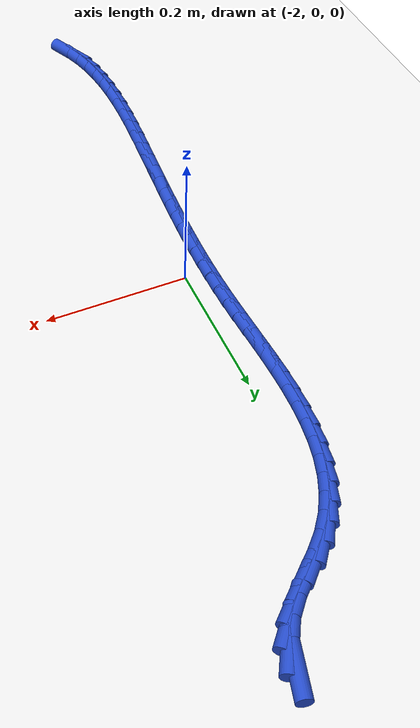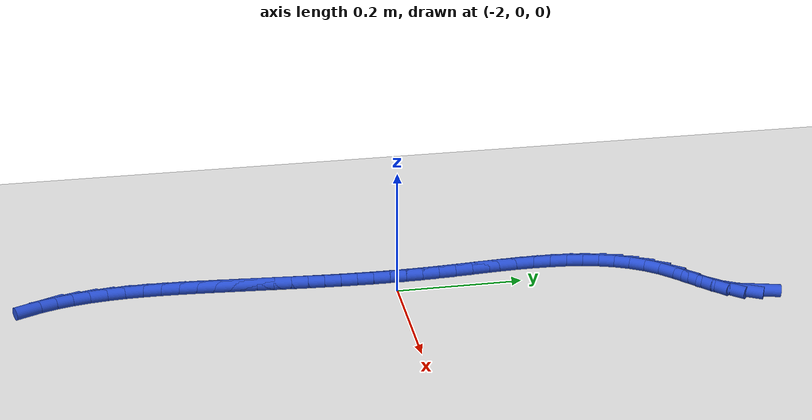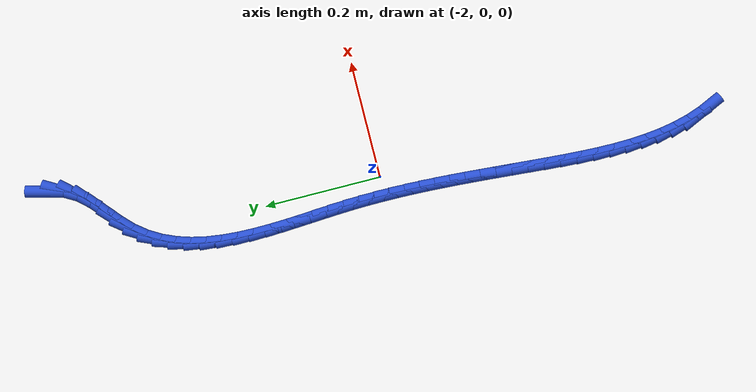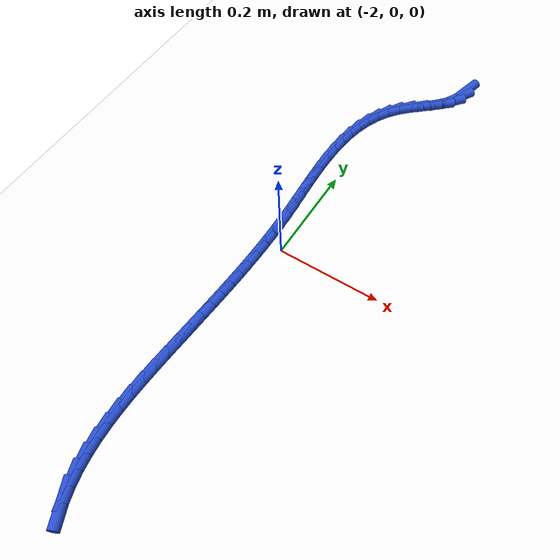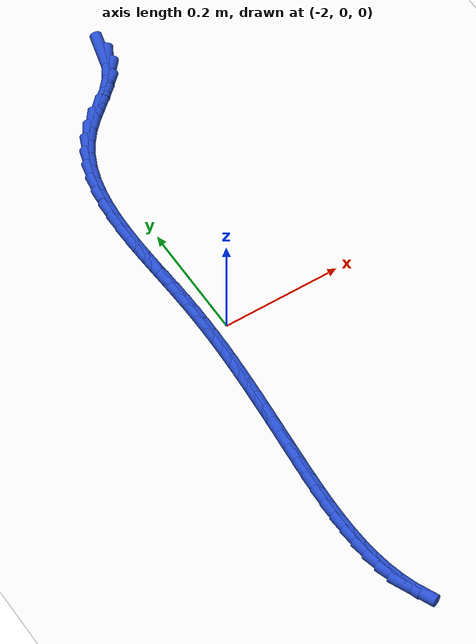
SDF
<sdf version="1.6">
 <world name="default">
  <model name="ground_plane">
   <static>1</static>
   <link name="link">
    <collision name="collision">
     <geometry><plane><normal>0 0 1</normal><size>100 100</size></plane></geometry>
     <surface><friction><ode><mu>100</mu><mu2>50</mu2></ode></friction></surface>
    </collision>
    <visual name="visual">
     <cast_shadows>0</cast_shadows>
     <geometry><plane><normal>0 0 1</normal><size>100 100</size></plane></geometry>
     <material>
      <script><uri>file://media/materials/scripts/gazebo.material</uri><name>Gazebo/WhiteGlow</name></script>
     </material>
    </visual>
   </link>
  </model>
  <model name="line">
   <link name="link_105">
    <pose>-1.8848105389328196 0.5468420540264167 0.01 0 1.57 1.3119761826926017</pose>
    <collision name="collision">
     <geometry><cylinder><radius>0.01</radius><length>0.08</length></cylinder></geometry>
    </collision>
    <visual name="visual">
     <material>
      <script><name>Gazebo/Blue</name><uri>file://media/materials/scripts/gazebo.material</uri></script>
     </material>
     <geometry><cylinder><radius>0.01</radius><length>0.08</length></cylinder></geometry>
    </visual>
   </link>
   <link name="link_106">
    <pose>-1.8914068553929104 0.521927596845452 0.01 0 1.57 1.0507535966799622</pose>
    <collision name="collision">
     <geometry><cylinder><radius>0.01</radius><length>0.08</length></cylinder></geometry>
    </collision>
    <visual name="visual">
     <material>
      <script><name>Gazebo/Blue</name><uri>file://media/materials/scripts/gazebo.material</uri></script>
     </material>
     <geometry><cylinder><radius>0.01</radius><length>0.08</length></cylinder></geometry>
    </visual>
   </link>
   <link name="link_107">
    <pose>-1.9039531759537018 0.5000171642790641 0.01 0 1.57 0.8395922741694354</pose>
    <collision name="collision">
     <geometry><cylinder><radius>0.01</radius><length>0.08</length></cylinder></geometry>
    </collision>
    <visual name="visual">
     <material>
      <script><name>Gazebo/Blue</name><uri>file://media/materials/scripts/gazebo.material</uri></script>
     </material>
     <geometry><cylinder><radius>0.01</radius><length>0.08</length></cylinder></geometry>
    </visual>
   </link>
   <link name="link_108">
    <pose>-1.9213823846065516 0.4805885191846716 0.01 0 1.57 0.7311464849480377</pose>
    <collision name="collision">
     <geometry><cylinder><radius>0.01</radius><length>0.08</length></cylinder></geometry>
    </collision>
    <visual name="visual">
     <material>
      <script><name>Gazebo/Blue</name><uri>file://media/materials/scripts/gazebo.material</uri></script>
     </material>
     <geometry><cylinder><radius>0.01</radius><length>0.08</length></cylinder></geometry>
    </visual>
   </link>
   <link name="link_109">
    <pose>-1.9415231126635923 0.4625226017323374 0.01 0 1.57 0.7114091680535584</pose>
    <collision name="collision">
     <geometry><cylinder><radius>0.01</radius><length>0.08</length></cylinder></geometry>
    </collision>
    <visual name="visual">
     <material>
      <script><name>Gazebo/Blue</name><uri>file://media/materials/scripts/gazebo.material</uri></script>
     </material>
     <geometry><cylinder><radius>0.01</radius><length>0.08</length></cylinder></geometry>
    </visual>
   </link>
   <link name="link_110">
    <pose>-1.962200930222627 0.4446986975775403 0.01 0 1.57 0.7763026427562312</pose>
    <collision name="collision">
     <geometry><cylinder><radius>0.01</radius><length>0.08</length></cylinder></geometry>
    </collision>
    <visual name="visual">
     <material>
      <script><name>Gazebo/Blue</name><uri>file://media/materials/scripts/gazebo.material</uri></script>
     </material>
     <geometry><cylinder><radius>0.01</radius><length>0.08</length></cylinder></geometry>
    </visual>
   </link>
   <link name="link_111">
    <pose>-1.9812449817672375 0.4259979639727986 0.01 0 1.57 0.9056962467084021</pose>
    <collision name="collision">
     <geometry><cylinder><radius>0.01</radius><length>0.08</length></cylinder></geometry>
    </collision>
    <visual name="visual">
     <material>
      <script><name>Gazebo/Blue</name><uri>file://media/materials/scripts/gazebo.material</uri></script>
     </material>
     <geometry><cylinder><radius>0.01</radius><length>0.08</length></cylinder></geometry>
    </visual>
   </link>
   <link name="link_112">
    <pose>-1.9971883002767663 0.4056701237665302 0.01 0 1.57 1.0377089754421864</pose>
    <collision name="collision">
     <geometry><cylinder><radius>0.01</radius><length>0.08</length></cylinder></geometry>
    </collision>
    <visual name="visual">
     <material>
      <script><name>Gazebo/Blue</name><uri>file://media/materials/scripts/gazebo.material</uri></script>
     </material>
     <geometry><cylinder><radius>0.01</radius><length>0.08</length></cylinder></geometry>
    </visual>
   </link>
   <link name="link_113">
    <pose>-2.0101087165380207 0.38377377696295417 0.01 0 1.57 1.158847343267695</pose>
    <collision name="collision">
     <geometry><cylinder><radius>0.01</radius><length>0.08</length></cylinder></geometry>
    </collision>
    <visual name="visual">
     <material>
      <script><name>Gazebo/Blue</name><uri>file://media/materials/scripts/gazebo.material</uri></script>
     </material>
     <geometry><cylinder><radius>0.01</radius><length>0.08</length></cylinder></geometry>
    </visual>
   </link>
   <link name="link_114">
    <pose>-2.020289161175801 0.36047491663275516 0.01 0 1.57 1.2658298532358956</pose>
    <collision name="collision">
     <geometry><cylinder><radius>0.01</radius><length>0.08</length></cylinder></geometry>
    </collision>
    <visual name="visual">
     <material>
      <script><name>Gazebo/Blue</name><uri>file://media/materials/scripts/gazebo.material</uri></script>
     </material>
     <geometry><cylinder><radius>0.01</radius><length>0.08</length></cylinder></geometry>
    </visual>
   </link>
   <link name="link_115">
    <pose>-2.0280125648149094 0.33593953584661757 0.01 0 1.57 1.3573774577721494</pose>
    <collision name="collision">
     <geometry><cylinder><radius>0.01</radius><length>0.08</length></cylinder></geometry>
    </collision>
    <visual name="visual">
     <material>
      <script><name>Gazebo/Blue</name><uri>file://media/materials/scripts/gazebo.material</uri></script>
     </material>
     <geometry><cylinder><radius>0.01</radius><length>0.08</length></cylinder></geometry>
    </visual>
   </link>
   <link name="link_116">
    <pose>-2.033561858080145 0.3103336276752266 0.01 0 1.57 1.4336745996832068</pose>
    <collision name="collision">
     <geometry><cylinder><radius>0.01</radius><length>0.08</length></cylinder></geometry>
    </collision>
    <visual name="visual">
     <material>
      <script><name>Gazebo/Blue</name><uri>file://media/materials/scripts/gazebo.material</uri></script>
     </material>
     <geometry><cylinder><radius>0.01</radius><length>0.08</length></cylinder></geometry>
    </visual>
   </link>
   <link name="link_117">
    <pose>-2.0372199715963113 0.2838231851892668 0.01 0 1.57 1.4957105667933275</pose>
    <collision name="collision">
     <geometry><cylinder><radius>0.01</radius><length>0.08</length></cylinder></geometry>
    </collision>
    <visual name="visual">
     <material>
      <script><name>Gazebo/Blue</name><uri>file://media/materials/scripts/gazebo.material</uri></script>
     </material>
     <geometry><cylinder><radius>0.01</radius><length>0.08</length></cylinder></geometry>
    </visual>
   </link>
   <link name="link_118">
    <pose>-2.0392698359882084 0.25657420145942234 0.01 0 1.57 1.5447595808169436</pose>
    <collision name="collision">
     <geometry><cylinder><radius>0.01</radius><length>0.08</length></cylinder></geometry>
    </collision>
    <visual name="visual">
     <material>
      <script><name>Gazebo/Blue</name><uri>file://media/materials/scripts/gazebo.material</uri></script>
     </material>
     <geometry><cylinder><radius>0.01</radius><length>0.08</length></cylinder></geometry>
    </visual>
   </link>
   <link name="link_119">
    <pose>-2.039994381880638 0.22875266955637857 0.01 0 1.57 -1.5595370249895415</pose>
    <collision name="collision">
     <geometry><cylinder><radius>0.01</radius><length>0.08</length></cylinder></geometry>
    </collision>
    <visual name="visual">
     <material>
      <script><name>Gazebo/Blue</name><uri>file://media/materials/scripts/gazebo.material</uri></script>
     </material>
     <geometry><cylinder><radius>0.01</radius><length>0.08</length></cylinder></geometry>
    </visual>
   </link>
   <link name="link_120">
    <pose>-2.0396765398983994 0.2005245825508198 0.01 0 1.57 -1.5329727740860972</pose>
    <collision name="collision">
     <geometry><cylinder><radius>0.01</radius><length>0.08</length></cylinder></geometry>
    </collision>
    <visual name="visual">
     <material>
      <script><name>Gazebo/Blue</name><uri>file://media/materials/scripts/gazebo.material</uri></script>
     </material>
     <geometry><cylinder><radius>0.01</radius><length>0.08</length></cylinder></geometry>
    </visual>
   </link>
   <link name="link_121">
    <pose>-2.0385992406662963 0.17205593351343076 0.01 0 1.57 -1.516412350843906</pose>
    <collision name="collision">
     <geometry><cylinder><radius>0.01</radius><length>0.08</length></cylinder></geometry>
    </collision>
    <visual name="visual">
     <material>
      <script><name>Gazebo/Blue</name><uri>file://media/materials/scripts/gazebo.material</uri></script>
     </material>
     <geometry><cylinder><radius>0.01</radius><length>0.08</length></cylinder></geometry>
    </visual>
   </link>
   <link name="link_122">
    <pose>-2.037045414809128 0.143512715514896 0.01 0 1.57 -1.5094564440181104</pose>
    <collision name="collision">
     <geometry><cylinder><radius>0.01</radius><length>0.08</length></cylinder></geometry>
    </collision>
    <visual name="visual">
     <material>
      <script><name>Gazebo/Blue</name><uri>file://media/materials/scripts/gazebo.material</uri></script>
     </material>
     <geometry><cylinder><radius>0.01</radius><length>0.08</length></cylinder></geometry>
    </visual>
   </link>
   <link name="link_123">
    <pose>-2.0352979929516968 0.11506092162589993 0.01 0 1.57 -1.512054837316595</pose>
    <collision name="collision">
     <geometry><cylinder><radius>0.01</radius><length>0.08</length></cylinder></geometry>
    </collision>
    <visual name="visual">
     <material>
      <script><name>Gazebo/Blue</name><uri>file://media/materials/scripts/gazebo.material</uri></script>
     </material>
     <geometry><cylinder><radius>0.01</radius><length>0.08</length></cylinder></geometry>
    </visual>
   </link>
   <link name="link_124">
    <pose>-2.033639905718803 0.08686654491712781 0.01 0 1.57 -1.5244721914635981</pose>
    <collision name="collision">
     <geometry><cylinder><radius>0.01</radius><length>0.08</length></cylinder></geometry>
    </collision>
    <visual name="visual">
     <material>
      <script><name>Gazebo/Blue</name><uri>file://media/materials/scripts/gazebo.material</uri></script>
     </material>
     <geometry><cylinder><radius>0.01</radius><length>0.08</length></cylinder></geometry>
    </visual>
   </link>
   <link name="link_125">
    <pose>-2.0323524638601613 0.059094395484548666 0.01 0 1.57 -1.5431916061423883</pose>
    <collision name="collision">
     <geometry><cylinder><radius>0.01</radius><length>0.08</length></cylinder></geometry>
    </collision>
    <visual name="visual">
     <material>
      <script><name>Gazebo/Blue</name><uri>file://media/materials/scripts/gazebo.material</uri></script>
     </material>
     <geometry><cylinder><radius>0.01</radius><length>0.08</length></cylinder></geometry>
    </visual>
   </link>
   <link name="link_126">
    <pose>-2.0315994661911283 0.031823465913732 0.01 0 1.57 -1.5614925663036696</pose>
    <collision name="collision">
     <geometry><cylinder><radius>0.01</radius><length>0.08</length></cylinder></geometry>
    </collision>
    <visual name="visual">
     <material>
      <script><name>Gazebo/Blue</name><uri>file://media/materials/scripts/gazebo.material</uri></script>
     </material>
     <geometry><cylinder><radius>0.01</radius><length>0.08</length></cylinder></geometry>
    </visual>
   </link>
   <link name="link_127">
    <pose>-2.0313498107100236 0.004990415137211754 0.01 0 1.57 1.5630813623841386</pose>
    <collision name="collision">
     <geometry><cylinder><radius>0.01</radius><length>0.08</length></cylinder></geometry>
    </collision>
    <visual name="visual">
     <material>
      <script><name>Gazebo/Blue</name><uri>file://media/materials/scripts/gazebo.material</uri></script>
     </material>
     <geometry><cylinder><radius>0.01</radius><length>0.08</length></cylinder></geometry>
    </visual>
   </link>
   <link name="link_128">
    <pose>-2.0315540446395204 -0.021481499256679467 0.01 0 1.57 1.5475577390319308</pose>
    <collision name="collision">
     <geometry><cylinder><radius>0.01</radius><length>0.08</length></cylinder></geometry>
    </collision>
    <visual name="visual">
     <material>
      <script><name>Gazebo/Blue</name><uri>file://media/materials/scripts/gazebo.material</uri></script>
     </material>
     <geometry><cylinder><radius>0.01</radius><length>0.08</length></cylinder></geometry>
    </visual>
   </link>
   <link name="link_129">
    <pose>-2.032162715202294 -0.04766901967960883 0.01 0 1.57 1.5337209726937873</pose>
    <collision name="collision">
     <geometry><cylinder><radius>0.01</radius><length>0.08</length></cylinder></geometry>
    </collision>
    <visual name="visual">
     <material>
      <script><name>Gazebo/Blue</name><uri>file://media/materials/scripts/gazebo.material</uri></script>
     </material>
     <geometry><cylinder><radius>0.01</radius><length>0.08</length></cylinder></geometry>
    </visual>
   </link>
   <link name="link_130">
    <pose>-2.033126369621016 -0.07364888854324343 0.01 0 1.57 1.5217356659473318</pose>
    <collision name="collision">
     <geometry><cylinder><radius>0.01</radius><length>0.08</length></cylinder></geometry>
    </collision>
    <visual name="visual">
     <material>
      <script><name>Gazebo/Blue</name><uri>file://media/materials/scripts/gazebo.material</uri></script>
     </material>
     <geometry><cylinder><radius>0.01</radius><length>0.08</length></cylinder></geometry>
    </visual>
   </link>
   <link name="link_131">
    <pose>-2.0343955551183592 -0.09949784825925041 0.01 0 1.57 1.5117344123850205</pose>
    <collision name="collision">
     <geometry><cylinder><radius>0.01</radius><length>0.08</length></cylinder></geometry>
    </collision>
    <visual name="visual">
     <material>
      <script><name>Gazebo/Blue</name><uri>file://media/materials/scripts/gazebo.material</uri></script>
     </material>
     <geometry><cylinder><radius>0.01</radius><length>0.08</length></cylinder></geometry>
    </visual>
   </link>
   <link name="link_132">
    <pose>-2.0359208189169977 -0.12529264123929681 0.01 0 1.57 1.5038143473089411</pose>
    <collision name="collision">
     <geometry><cylinder><radius>0.01</radius><length>0.08</length></cylinder></geometry>
    </collision>
    <visual name="visual">
     <material>
      <script><name>Gazebo/Blue</name><uri>file://media/materials/scripts/gazebo.material</uri></script>
     </material>
     <geometry><cylinder><radius>0.01</radius><length>0.08</length></cylinder></geometry>
    </visual>
   </link>
   <link name="link_133">
    <pose>-2.037652708239605 -0.15111000989505052 0.01 0 1.57 1.4980352045127714</pose>
    <collision name="collision">
     <geometry><cylinder><radius>0.01</radius><length>0.08</length></cylinder></geometry>
    </collision>
    <visual name="visual">
     <material>
      <script><name>Gazebo/Blue</name><uri>file://media/materials/scripts/gazebo.material</uri></script>
     </material>
     <geometry><cylinder><radius>0.01</radius><length>0.08</length></cylinder></geometry>
    </visual>
   </link>
   <link name="link_134">
    <pose>-2.0395417703088548 -0.1770266966381772 0.01 0 1.57 1.494418866208825</pose>
    <collision name="collision">
     <geometry><cylinder><radius>0.01</radius><length>0.08</length></cylinder></geometry>
    </collision>
    <visual name="visual">
     <material>
      <script><name>Gazebo/Blue</name><uri>file://media/materials/scripts/gazebo.material</uri></script>
     </material>
     <geometry><cylinder><radius>0.01</radius><length>0.08</length></cylinder></geometry>
    </visual>
   </link>
   <link name="link_135">
    <pose>-2.041538552347419 -0.2031194438803447 0.01 0 1.57 1.4929503019937296</pose>
    <collision name="collision">
     <geometry><cylinder><radius>0.01</radius><length>0.08</length></cylinder></geometry>
    </collision>
    <visual name="visual">
     <material>
      <script><name>Gazebo/Blue</name><uri>file://media/materials/scripts/gazebo.material</uri></script>
     </material>
     <geometry><cylinder><radius>0.01</radius><length>0.08</length></cylinder></geometry>
    </visual>
   </link>
   <link name="link_136">
    <pose>-2.0435936015779714 -0.22946499403322002 0.01 0 1.57 1.4935797277631322</pose>
    <collision name="collision">
     <geometry><cylinder><radius>0.01</radius><length>0.08</length></cylinder></geometry>
    </collision>
    <visual name="visual">
     <material>
      <script><name>Gazebo/Blue</name><uri>file://media/materials/scripts/gazebo.material</uri></script>
     </material>
     <geometry><cylinder><radius>0.01</radius><length>0.08</length></cylinder></geometry>
    </visual>
   </link>
   <link name="link_137">
    <pose>-2.0456574652231856 -0.2561400895084704 0.01 0 1.57 1.4962286133116103</pose>
    <collision name="collision">
     <geometry><cylinder><radius>0.01</radius><length>0.08</length></cylinder></geometry>
    </collision>
    <visual name="visual">
     <material>
      <script><name>Gazebo/Blue</name><uri>file://media/materials/scripts/gazebo.material</uri></script>
     </material>
     <geometry><cylinder><radius>0.01</radius><length>0.08</length></cylinder></geometry>
    </visual>
   </link>
   <link name="link_138">
    <pose>-2.047680603184475 -0.28322133815188055 0.01 0 1.57 1.5020402397662747</pose>
    <collision name="collision">
     <geometry><cylinder><radius>0.01</radius><length>0.08</length></cylinder></geometry>
    </collision>
    <visual name="visual">
     <material>
      <script><name>Gazebo/Blue</name><uri>file://media/materials/scripts/gazebo.material</uri></script>
     </material>
     <geometry><cylinder><radius>0.01</radius><length>0.08</length></cylinder></geometry>
    </visual>
   </link>
   <link name="link_139">
    <pose>-2.0495746706455855 -0.31072554804182073 0.01 0 1.57 1.5141117194599003</pose>
    <collision name="collision">
     <geometry><cylinder><radius>0.01</radius><length>0.08</length></cylinder></geometry>
    </collision>
    <visual name="visual">
     <material>
      <script><name>Gazebo/Blue</name><uri>file://media/materials/scripts/gazebo.material</uri></script>
     </material>
     <geometry><cylinder><radius>0.01</radius><length>0.08</length></cylinder></geometry>
    </visual>
   </link>
   <link name="link_140">
    <pose>-2.0511516464397626 -0.3385159216402458 0.01 0 1.57 1.5329829189739606</pose>
    <collision name="collision">
     <geometry><cylinder><radius>0.01</radius><length>0.08</length></cylinder></geometry>
    </collision>
    <visual name="visual">
     <material>
      <script><name>Gazebo/Blue</name><uri>file://media/materials/scripts/gazebo.material</uri></script>
     </material>
     <geometry><cylinder><radius>0.01</radius><length>0.08</length></cylinder></geometry>
    </visual>
   </link>
   <link name="link_141">
    <pose>-2.052207726931078 -0.36643133993371857 0.01 0 1.57 1.5589106114102949</pose>
    <collision name="collision">
     <geometry><cylinder><radius>0.01</radius><length>0.08</length></cylinder></geometry>
    </collision>
    <visual name="visual">
     <material>
      <script><name>Gazebo/Blue</name><uri>file://media/materials/scripts/gazebo.material</uri></script>
     </material>
     <geometry><cylinder><radius>0.01</radius><length>0.08</length></cylinder></geometry>
    </visual>
   </link>
   <link name="link_142">
    <pose>-2.052539108483605 -0.3943106839088045 0.01 0 1.57 -1.5492290561025992</pose>
    <collision name="collision">
     <geometry><cylinder><radius>0.01</radius><length>0.08</length></cylinder></geometry>
    </collision>
    <visual name="visual">
     <material>
      <script><name>Gazebo/Blue</name><uri>file://media/materials/scripts/gazebo.material</uri></script>
     </material>
     <geometry><cylinder><radius>0.01</radius><length>0.08</length></cylinder></geometry>
    </visual>
   </link>
   <link name="link_143">
    <pose>-2.0519419874614155 -0.42199283455206793 0.01 0 1.57 -1.5075869294554358</pose>
    <collision name="collision">
     <geometry><cylinder><radius>0.01</radius><length>0.08</length></cylinder></geometry>
    </collision>
    <visual name="visual">
     <material>
      <script><name>Gazebo/Blue</name><uri>file://media/materials/scripts/gazebo.material</uri></script>
     </material>
     <geometry><cylinder><radius>0.01</radius><length>0.08</length></cylinder></geometry>
    </visual>
   </link>
   <link name="link_144">
    <pose>-2.0502125602285823 -0.4493166728500736 0.01 0 1.57 -1.4569241758085367</pose>
    <collision name="collision">
     <geometry><cylinder><radius>0.01</radius><length>0.08</length></cylinder></geometry>
    </collision>
    <visual name="visual">
     <material>
      <script><name>Gazebo/Blue</name><uri>file://media/materials/scripts/gazebo.material</uri></script>
     </material>
     <geometry><cylinder><radius>0.01</radius><length>0.08</length></cylinder></geometry>
    </visual>
   </link>
   <link name="link_145">
    <pose>-2.047147023149179 -0.476121079789386 0.01 0 1.57 -1.3962964500672372</pose>
    <collision name="collision">
     <geometry><cylinder><radius>0.01</radius><length>0.08</length></cylinder></geometry>
    </collision>
    <visual name="visual">
     <material>
      <script><name>Gazebo/Blue</name><uri>file://media/materials/scripts/gazebo.material</uri></script>
     </material>
     <geometry><cylinder><radius>0.01</radius><length>0.08</length></cylinder></geometry>
    </visual>
   </link>
   <link name="link_146">
    <pose>-2.0425415725872766 -0.5022449363565696 0.01 0 1.57 -1.3247524820919132</pose>
    <collision name="collision">
     <geometry><cylinder><radius>0.01</radius><length>0.08</length></cylinder></geometry>
    </collision>
    <visual name="visual">
     <material>
      <script><name>Gazebo/Blue</name><uri>file://media/materials/scripts/gazebo.material</uri></script>
     </material>
     <geometry><cylinder><radius>0.01</radius><length>0.08</length></cylinder></geometry>
    </visual>
   </link>
   <link name="link_147">
    <pose>-2.036192404906948 -0.5275271235381891 0.01 0 1.57 -1.2415193552200607</pose>
    <collision name="collision">
     <geometry><cylinder><radius>0.01</radius><length>0.08</length></cylinder></geometry>
    </collision>
    <visual name="visual">
     <material>
      <script><name>Gazebo/Blue</name><uri>file://media/materials/scripts/gazebo.material</uri></script>
     </material>
     <geometry><cylinder><radius>0.01</radius><length>0.08</length></cylinder></geometry>
    </visual>
   </link>
   <link name="link_148">
    <pose>-2.0278957164722677 -0.5518065223208091 0.01 0 1.57 -1.1462872435440044</pose>
    <collision name="collision">
     <geometry><cylinder><radius>0.01</radius><length>0.08</length></cylinder></geometry>
    </collision>
    <visual name="visual">
     <material>
      <script><name>Gazebo/Blue</name><uri>file://media/materials/scripts/gazebo.material</uri></script>
     </material>
     <geometry><cylinder><radius>0.01</radius><length>0.08</length></cylinder></geometry>
    </visual>
   </link>
  </model>
 </world>
</sdf>
